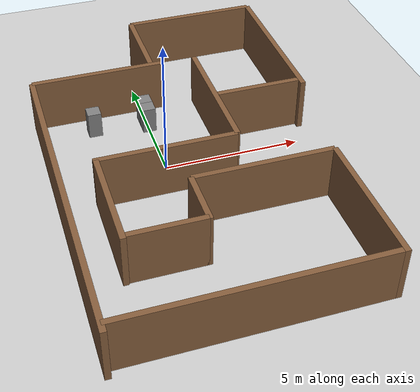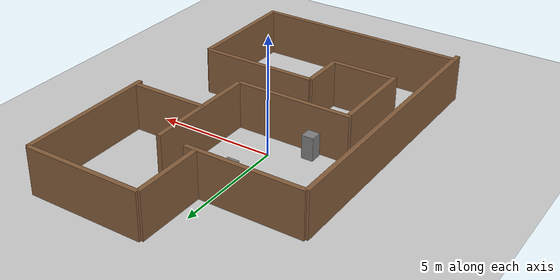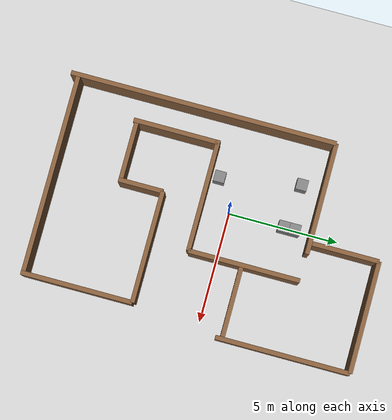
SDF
<sdf version="1.10">
 <world name="robot_project">
  <physics name="1ms" type="ignored">
   <max_step_size>0.02</max_step_size>
   <real_time_factor>1.0</real_time_factor>
  </physics>
  <plugin filename="gz-sim-physics-system" name="gz::sim::systems::Physics"/>
  <plugin filename="gz-sim-user-commands-system" name="gz::sim::systems::UserCommands"/>
  <plugin filename="gz-sim-scene-broadcaster-system" name="gz::sim::systems::SceneBroadcaster"/>
  <plugin filename="gz-sim-imu-system" name="gz::sim::systems::Imu"/>
  <plugin filename="gz-sim-sensors-system" name="gz::sim::systems::Sensors">
   <render_engine>ogre2</render_engine>
  </plugin>
  <plugin filename="gz-sim-triggered-publisher-system" name="gz::sim::systems::TriggeredPublisher">
   <input type="gz.msgs.Int32" topic="/keyboard/keypress"><match field="data">87</match></input>
   <output type="gz.msgs.Twist" topic="/model/drive_robot/cmd_vel">linear: {x: 0.5}, angular: {z: 0.0}</output>
  </plugin>
  <plugin filename="gz-sim-triggered-publisher-system" name="gz::sim::systems::TriggeredPublisher">
   <input type="gz.msgs.Int32" topic="/keyboard/keypress"><match field="data">88</match></input>
   <output type="gz.msgs.Twist" topic="/model/drive_robot/cmd_vel">linear: {x: -0.5}, angular: {z: 0.0}</output>
  </plugin>
  <plugin filename="gz-sim-triggered-publisher-system" name="gz::sim::systems::TriggeredPublisher">
   <input type="gz.msgs.Int32" topic="/keyboard/keypress"><match field="data">65</match></input>
   <output type="gz.msgs.Twist" topic="/model/drive_robot/cmd_vel">linear: {x: 0.0}, angular: {z: 0.5}</output>
  </plugin>
  <plugin filename="gz-sim-triggered-publisher-system" name="gz::sim::systems::TriggeredPublisher">
   <input type="gz.msgs.Int32" topic="/keyboard/keypress"><match field="data">68</match></input>
   <output type="gz.msgs.Twist" topic="/model/drive_robot/cmd_vel">linear: {x: 0.0}, angular: {z: -0.5}</output>
  </plugin>
  <plugin filename="gz-sim-triggered-publisher-system" name="gz::sim::systems::TriggeredPublisher">
   <input type="gz.msgs.Int32" topic="/keyboard/keypress"><match field="data">83</match></input>
   <output type="gz.msgs.Twist" topic="/model/drive_robot/cmd_vel">linear: {x: 0.0}, angular: {z: 0.0}</output>
  </plugin>
  <light type="directional" name="sun">
   <pose>0 0 10 0 0 0</pose>
   <diffuse>0.8 0.8 0.8 1</diffuse>
   <specular>0.2 0.2 0.2 1</specular>
   <attenuation>
    <range>1000</range>
    <constant>0.9</constant>
    <linear>0.01</linear>
    <quadratic>0.001</quadratic>
   </attenuation>
   <direction>-0.5 0.1 -0.9</direction>
  </light>
  <model name="ground_plane">
   <static>true</static>
   <link name="link">
    <collision name="collision"><geometry><plane><normal>0 0 1</normal></plane></geometry></collision>
    <visual name="visual">
     <geometry><plane><normal>0 0 1</normal><size>300 300</size></plane></geometry>
     <material>
      <ambient>0.8 0.8 0.8 1</ambient>
      <diffuse>0.8 0.8 0.8 1</diffuse>
      <specular>0.8 0.8 0.8 1</specular>
     </material>
    </visual>
   </link>
  </model>
  <model name="mainroom_front_wall">
   <static>true</static>
   <pose relative_to="ground_plane">2.2 1.25 1.0 0 0 0</pose>
   <link name="link">
    <collision name="collision"><geometry><box><size>0.2 5.0 2.0</size></box></geometry></collision>
    <visual name="visual">
     <geometry><box><size>0.2 5.0 2.0</size></box></geometry>
     <material>
      <ambient>0.523 0.367 0.234 1</ambient>
      <diffuse>0.523 0.367 0.234 1</diffuse>
      <specular>0.238 0.219 0.273 1</specular>
     </material>
    </visual>
   </link>
  </model>
  <model name="mainroom_left_wall">
   <static>true</static>
   <pose relative_to="world">-1.5 3.75 1.0 0 0 0</pose>
   <link name="link">
    <collision name="collision"><geometry><box><size>5.0 0.2 2.0</size></box></geometry></collision>
    <visual name="visual">
     <geometry><box><size>5.0 0.2 2.0</size></box></geometry>
     <material>
      <ambient>0.523 0.367 0.234 1</ambient>
      <diffuse>0.523 0.367 0.234 1</diffuse>
      <specular>0.238 0.219 0.273 1</specular>
     </material>
    </visual>
   </link>
  </model>
  <model name="mainroom_right_wall">
   <static>true</static>
   <pose relative_to="world">-0.3 -1.25 1.0 0 0 0</pose>
   <link name="link">
    <collision name="collision"><geometry><box><size>5.0 0.2 2.0</size></box></geometry></collision>
    <visual name="visual">
     <geometry><box><size>5.0 0.2 2.0</size></box></geometry>
     <material>
      <ambient>0.523 0.367 0.234 1</ambient>
      <diffuse>0.523 0.367 0.234 1</diffuse>
      <specular>0.238 0.219 0.273 1</specular>
     </material>
    </visual>
   </link>
  </model>
  <model name="mainroom_behind_wall">
   <static>true</static>
   <pose relative_to="ground_plane">-4 -2.25 1.0 0 0 0</pose>
   <link name="link">
    <collision name="collision"><geometry><box><size>0.2 12.0 2.0</size></box></geometry></collision>
    <visual name="visual">
     <geometry><box><size>0.2 12.0 2.0</size></box></geometry>
     <material>
      <ambient>0.523 0.367 0.234 1</ambient>
      <diffuse>0.523 0.367 0.234 1</diffuse>
      <specular>0.238 0.219 0.273 1</specular>
     </material>
    </visual>
   </link>
  </model>
  <model name="box1">
   <static>true</static>
   <pose relative_to="world">0 2.5 0.5 0 0 0</pose>
   <link name="box1">
    <collision name="collision"><geometry><box><size>0.5 0.5 1</size></box></geometry></collision>
    <visual name="visual">
     <geometry><box><size>0.5 0.5 1</size></box></geometry>
     <material>
      <ambient>0.5 0.5 0.5 1</ambient>
      <diffuse>0.5 0.5 0.5 1</diffuse>
      <specular>0.5 0.5 0.5 1</specular>
     </material>
    </visual>
   </link>
  </model>
  <model name="box2">
   <static>true</static>
   <pose relative_to="world">-2 2.8 0.5 0 0 0</pose>
   <link name="box2">
    <collision name="collision"><geometry><box><size>0.5 0.5 1</size></box></geometry></collision>
    <visual name="visual">
     <geometry><box><size>0.5 0.5 1</size></box></geometry>
     <material>
      <ambient>0.5 0.5 0.5 1</ambient>
      <diffuse>0.5 0.5 0.5 1</diffuse>
      <specular>0.5 0.5 0.5 1</specular>
     </material>
    </visual>
   </link>
  </model>
  <model name="box3">
   <static>true</static>
   <pose relative_to="world">-1.4 -0.8 0.5 0 0 0</pose>
   <link name="box3">
    <collision name="collision"><geometry><box><size>0.5 0.5 1</size></box></geometry></collision>
    <visual name="visual">
     <geometry><box><size>0.5 0.5 1</size></box></geometry>
     <material>
      <ambient>0.5 0.5 0.5 1</ambient>
      <diffuse>0.5 0.5 0.5 1</diffuse>
      <specular>0.5 0.5 0.5 1</specular>
     </material>
    </visual>
   </link>
  </model>
  <model name="box4">
   <static>true</static>
   <pose relative_to="world">0 3 0.5 0 0 0</pose>
   <link name="box4">
    <collision name="collision"><geometry><box><size>0.5 0.5 1</size></box></geometry></collision>
    <visual name="visual">
     <geometry><box><size>0.5 0.5 1</size></box></geometry>
     <material>
      <ambient>0.5 0.5 0.5 1</ambient>
      <diffuse>0.5 0.5 0.5 1</diffuse>
      <specular>0.5 0.5 0.5 1</specular>
     </material>
    </visual>
   </link>
  </model>
  <model name="left_sideroom_bottom_wall">
   <static>true</static>
   <pose relative_to="ground_plane">0.5 5.35 1.0 0 0 0</pose>
   <link name="link">
    <collision name="collision"><geometry><box><size>0.2 3.0 2.0 0 0 0</size></box></geometry></collision>
    <visual name="visual">
     <geometry><box><size>0.2 3.0 2.0 0 0 0</size></box></geometry>
     <material>
      <ambient>0.523 0.367 0.234 1</ambient>
      <diffuse>0.523 0.367 0.234 1</diffuse>
      <specular>0.238 0.219 0.273 1</specular>
     </material>
    </visual>
   </link>
  </model>
  <model name="leftside_room_left_wall">
   <static>true</static>
   <pose relative_to="ground_plane">3.0 6.85 1.0 0 0 0</pose>
   <link name="link">
    <collision name="collision"><geometry><box><size>5.0 0.2 2.0</size></box></geometry></collision>
    <visual name="visual">
     <geometry><box><size>5.0 0.2 2.0</size></box></geometry>
     <material>
      <ambient>0.523 0.367 0.234 1</ambient>
      <diffuse>0.523 0.367 0.234 1</diffuse>
      <specular>0.238 0.219 0.273 1</specular>
     </material>
    </visual>
   </link>
  </model>
  <model name="leftside_room_front_wall">
   <static>true</static>
   <pose relative_to="ground_plane">5.5 3.85 1.0 0 0 0</pose>
   <link name="link">
    <collision name="collision"><geometry><box><size>0.2 6.0 2.0</size></box></geometry></collision>
    <visual name="visual">
     <geometry><box><size>0.2 6.0 2.0</size></box></geometry>
     <material>
      <ambient>0.523 0.367 0.234 1</ambient>
      <diffuse>0.523 0.367 0.234 1</diffuse>
      <specular>0.238 0.219 0.273 1</specular>
     </material>
    </visual>
   </link>
  </model>
  <model name="leftside_room_right_wall">
   <static>true</static>
   <pose relative_to="ground_plane">3.8 1.15 1.0 0 0 0</pose>
   <link name="link">
    <collision name="collision"><geometry><box><size>3.2 0.2 2.0</size></box></geometry></collision>
    <visual name="visual">
     <geometry><box><size>3.2 0.2 2.0</size></box></geometry>
     <material>
      <ambient>0.523 0.367 0.234 1</ambient>
      <diffuse>0.523 0.367 0.234 1</diffuse>
      <specular>0.238 0.219 0.273 1</specular>
     </material>
    </visual>
   </link>
  </model>
  <model name="horizontalhallway_top_wall">
   <static>true</static>
   <pose relative_to="ground_plane">-2.7 -3.15 1.0 0 0 0</pose>
   <link name="link">
    <collision name="collision"><geometry><box><size>0.2 3.8 2.0</size></box></geometry></collision>
    <visual name="visual">
     <geometry><box><size>0.2 3.8 2.0</size></box></geometry>
     <material>
      <ambient>0.523 0.367 0.234 1</ambient>
      <diffuse>0.523 0.367 0.234 1</diffuse>
      <specular>0.238 0.219 0.273 1</specular>
     </material>
    </visual>
   </link>
  </model>
  <model name="verticalhallway_left_wall">
   <static>true</static>
   <pose relative_to="ground_plane">-1.3 -4.9 1.0 0 0 0</pose>
   <link name="link">
    <collision name="collision"><geometry><box><size>2.6 0.2 2.0</size></box></geometry></collision>
    <visual name="visual">
     <geometry><box><size>2.6 0.2 2.0</size></box></geometry>
     <material>
      <ambient>0.523 0.367 0.234 1</ambient>
      <diffuse>0.523 0.367 0.234 1</diffuse>
      <specular>0.238 0.219 0.273 1</specular>
     </material>
    </visual>
   </link>
  </model>
  <model name="verticalhallway_right_wall">
   <static>true</static>
   <pose relative_to="ground_plane">0.5 -7.9 1.0 0 0 0</pose>
   <link name="link">
    <collision name="collision"><geometry><box><size>9.0 0.2 2.0</size></box></geometry></collision>
    <visual name="visual">
     <geometry><box><size>9.0 0.2 2.0</size></box></geometry>
     <material>
      <ambient>0.523 0.367 0.234 1</ambient>
      <diffuse>0.523 0.367 0.234 1</diffuse>
      <specular>0.238 0.219 0.273 1</specular>
     </material>
    </visual>
   </link>
  </model>
  <model name="rightroom_front_wall">
   <static>true</static>
   <pose relative_to="ground_plane">5.0 -5.5 1.0 0 0 0</pose>
   <link name="link">
    <collision name="collision"><geometry><box><size>0.2 5.0 2.0</size></box></geometry></collision>
    <visual name="visual">
     <geometry><box><size>0.2 5.0 2.0</size></box></geometry>
     <material>
      <ambient>0.523 0.367 0.234 1</ambient>
      <diffuse>0.523 0.367 0.234 1</diffuse>
      <specular>0.238 0.219 0.273 1</specular>
     </material>
    </visual>
   </link>
  </model>
  <model name="rightroom_left_wall">
   <static>true</static>
   <pose relative_to="ground_plane">2.5 -3.0 1.0 0 0 0</pose>
   <link name="link">
    <collision name="collision"><geometry><box><size>5.0 0.2 2.0</size></box></geometry></collision>
    <visual name="visual">
     <geometry><box><size>5.0 0.2 2.0</size></box></geometry>
     <material>
      <ambient>0.523 0.367 0.234 1</ambient>
      <diffuse>0.523 0.367 0.234 1</diffuse>
      <specular>0.238 0.219 0.273 1</specular>
     </material>
    </visual>
   </link>
  </model>
  <model name="rightroom_back_wall">
   <static>true</static>
   <pose relative_to="ground_plane">0 -4.0 1.0 0 0 0</pose>
   <link name="link">
    <collision name="collision"><geometry><box><size>0.2 2.0 2.0</size></box></geometry></collision>
    <visual name="visual">
     <geometry><box><size>0.2 2.0 2.0</size></box></geometry>
     <material>
      <ambient>0.523 0.367 0.234 1</ambient>
      <diffuse>0.523 0.367 0.234 1</diffuse>
      <specular>0.238 0.219 0.273 1</specular>
     </material>
    </visual>
   </link>
  </model>
 </world>
</sdf>
